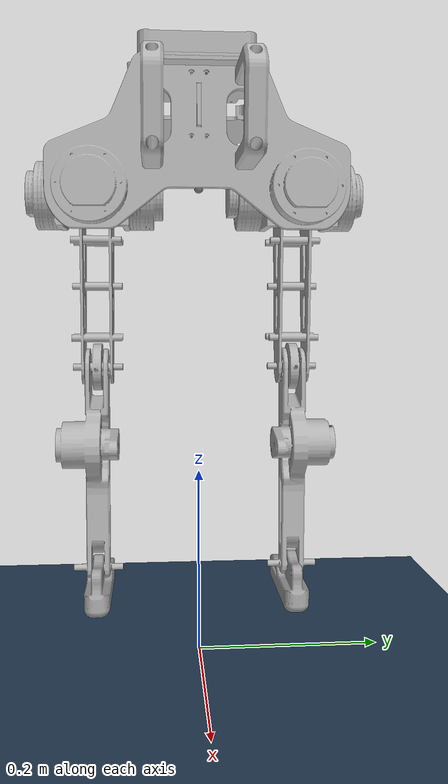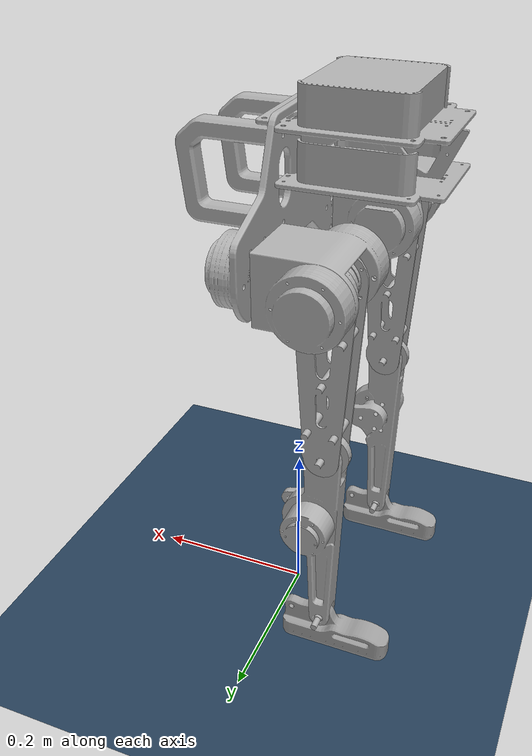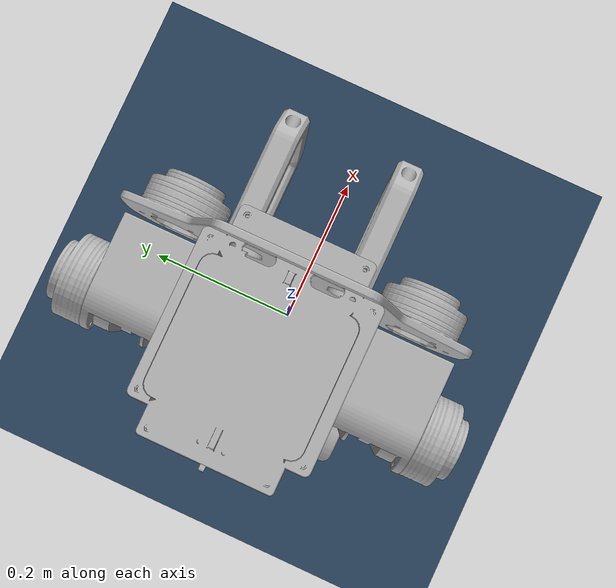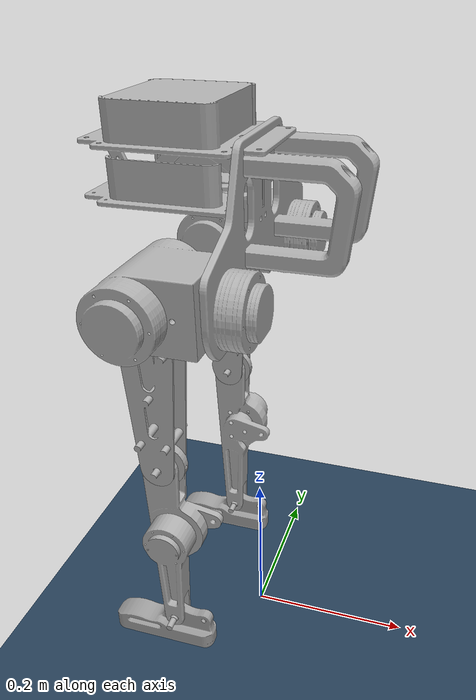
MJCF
<mujoco model="saturdayMASTER.SLDASM">
  <compiler angle="radian" meshdir="assets" texturedir="assets"/>
  <size njmax="500" nconmax="100" />
  <option cone="elliptic" impratio="10"/>

  <default>
    <joint damping="0.03" armature="0.002" frictionloss="0.02"/>
    <general ctrlrange="-3.141592 3.141592" forcerange="-9 9"/>
  </default>

  <asset>
    <mesh name="base_link" file="base_link.STL"/>
    <mesh name="HR" file="HR.STL"/>
    <mesh name="TR" file="TR.STL"/>
    <mesh name="SR" file="SR.STL"/>
    <mesh name="FR" file="FR.STL"/>
    <mesh name="HL" file="HL.STL"/>
    <mesh name="TL" file="TL.STL"/>
    <mesh name="SL" file="SL.STL"/>
    <mesh name="FL" file="FL.STL"/>
    <mesh name="PCPC" file="PCPC.STL"/>

    <texture type="2d" name="trunk_A1" file="trunk_A1.png"/>
    <material name="carbonfibre" texture="trunk_A1" specular="0" shininess="0.25"/>

    <material name="dark" specular="0" shininess="0.25" rgba="0.2 0.2 0.2 1"/>
    <texture name="grid" type="2d" builtin="checker" width="512" height="512" rgb1=".1 .2 .3" rgb2=".2 .3 .4"/>
    <material name="grid" texture="grid" texrepeat="1 1" texuniform="true" reflectance=".2"/>
  </asset>

   <visual>
	  <headlight diffuse="0.6 0.6 0.6" ambient="0.3 0.3 0.3" specular="0 0 0"/>
	  <global azimuth="-90"/>
    <scale forcewidth="0.035" contactwidth="0.1" contactheight="0.04" com="0.2" />
    <rgba com="0.502 1 0 0.5" contactpoint="1 1 0.6 0.4" contactforce="0.98 0.4 0.4 0.7" />
  </visual>

  <statistic extent="1" center="0 0 .3"/>

  <worldbody>
    <light pos="0 0 1.5" dir="0 0 -1" diffuse="0.5 0.5 0.5" specular="0.3 0.3 0.3" directional="true" castshadow="false"/>
    <geom type="plane" size="10 10 .01" material="grid"/>
    <body name="pelvis" pos = "0 0 .51" quat = "1 0 0 1">
      <freejoint/>
      <site name="head" rgba="1 0 0 1" pos="0.0 0.1 0.0" group="5"/>
      <body name="base_inertia">
        <inertial pos="-9.8075E-08 -0.026388 0.016857" quat="7.04842911E-01 7.09363426E-01 2.95162595E-06 -3.53024086E-06" mass="0.8" diaginertia="0.0010747 0.00184807 0.00249313"/>
        <geom type="mesh" rgba="0.69804 0.69804 0.69804 1" mesh="base_link"/>
      </body>
      <body name="pc_inertia">
        <inertial pos="0 0.07705 0.13101" quat="9.99995560e-01 2.97977116e-03 1.48833623e-05 1.00802829e-05" mass="0.84889" diaginertia="0.0012861 0.00135326 0.00243134"/>
        <geom pos="0 0.1668 0.076047" type="mesh" rgba="0.69804 0.69804 0.69804 1" mesh="PCPC"/>
      </body>
      <site name="torso"/>
      <body name="HR" pos="0.116 0.0760307 0">
        <inertial pos="-0.0022112 -0.0074687 0.0012046" quat="0.610545 0.791982 -0.00018656 -0.000166422" mass="1.1716" diaginertia="0.0010107 0.000889554 0.000807186"/>
        <joint name="HR" pos="0 0 0" axis="0 -1 0" limited="false"/>
        <geom type="mesh" rgba="0.69804 0.69804 0.69804 1" mesh="HR"/>
        <body name="TR">
          <inertial pos="0.0032217 -1.4794e-12 -0.11697" quat="1 -2.44026e-05 0 0" mass="0.2485" diaginertia="0.00045966 0.00043118 6.6608e-05"/>
          <joint name="TR" pos="0 0 0" axis="-1 0 0" limited="false"/>
          <joint name="SR_parent" pos="0 0 0" axis="-1 0 0" limited="false"/>
          <geom type="mesh" rgba="0.69804 0.69804 0.69804 1" mesh="TR"/>
          <body name="SR" pos="0 0 -0.2">
            <inertial pos="0.013454 -0.0086691 -0.1053" quat="0.999944 0.00459107 -0.00078075 0.00948332" mass="0.45579" diaginertia="0.000577103 0.000543322 0.000136545"/>
            <joint name="SR" pos="0 0 0" axis="1 0 0" limited="false"/>
            <geom type="mesh" rgba="0.69804 0.69804 0.69804 1" mesh="SR"/>
            <body name="FR" pos="0 0 -0.24">
              <inertial pos="6.2538e-06 0.015791 -0.026269" quat="0.71996 0.694016 0.000136179 -0.000175049" mass="0.12898" diaginertia="0.00019456 0.000193198 1.66785e-05"/>
              <joint name="FR" pos="0 0 0" axis="1 0 0" limited="false" damping="0.07" frictionloss="0.2" armature="0.03"/>
              <geom type="mesh" rgba="0.62745 0.62745 0.62745 1" mesh="FR"/>
              <site name="right_contact_ref" rgba="0 1 0 1" type="sphere" size="0.02"  pos="0.0 0.0 0.0" group="5"/>
              <site name="right_foot" rgba="0 1 0 0.5" pos="0.0 0.0 -0.04" group="5"/>
              <site name="RB" rgba="1 0 0 1" pos="0 0.04 -0.04" type="cylinder" size="0.05" group="5"/>
              <site name="RF" rgba="1 0 0 1" pos="0 -0.04 -0.04" type="cylinder" size="0.05" group="5"/>
            </body>
          </body>
        </body>
      </body>
      <body name="HL" pos="-0.116 0.0760307 0">
        <inertial pos="0.0022047 -0.0074687 0.0010787" quat="0.61048 0.791973 -0.00678111 0.00679143" mass="1.1716" diaginertia="0.00101075 0.00088951 0.000807185"/>
        <joint name="HL" pos="0 0 0" axis="0 -1 0" limited="false"/>
        <geom type="mesh" rgba="0.69804 0.69804 0.69804 1" mesh="HL"/>
        <body name="TL">
          <inertial pos="-0.0032217 1.4785e-12 -0.11697" quat="1 2.44026e-05 0 0" mass="0.2485" diaginertia="0.00045966 0.00043118 6.6608e-05"/>
          <joint name="TL" pos="0 0 0" axis="-1 0 0" limited="false"/>
          <joint name="SL_parent" pos="0 0 0" axis="-1 0 0" limited="false"/>
          <geom type="mesh" rgba="0.69804 0.69804 0.69804 1" mesh="TL"/>
          <body name="SL" pos="0 0 -0.2">
            <inertial pos="-0.013454 -0.0086668 -0.10518" quat="0.999946 0.00483719 -2.73708e-05 -0.00918761" mass="0.45579" diaginertia="0.000577101 0.000543337 0.000136532"/>
            <joint name="SL" pos="0 0 0" axis="1 0 0" limited="false"/>
            <geom type="mesh" rgba="0.69804 0.69804 0.69804 1" mesh="SL"/>
            <body name="FL" pos="0 0 -0.24">
              <inertial pos="6.2538e-06 0.015791 -0.026269" quat="0.71996 0.694016 0.000136179 -0.000175049" mass="0.12898" diaginertia="0.00019456 0.000193198 1.66785e-05"/>
              <joint name="FL" pos="0 0 0" axis="1 0 0" limited="false" damping="0.07" frictionloss="0.2" armature="0.03"/>
              <geom type="mesh" rgba="0.62745 0.62745 0.62745 1" mesh="FL"/>
              <site name="left_contact_ref" rgba="0 1 0 1" type="sphere" size="0.02" pos="0.0 0.0 0.0" group="5"/>
              <site name="left_foot" rgba="1 0 0 1" pos="0 0 -0.04" group="5"/>
              <site name="LB" rgba="1 0 0 1" pos="0 0.04 -0.04" type="cylinder" size="0.05" group="5"/>
              <site name="LF" rgba="1 0 0 1" pos="0 -0.04 -0.04" type="cylinder" size="0.05"  group="5"/>
            </body>
          </body>
        </body>
      </body>
    </body>
  </worldbody>
  <actuator>
    <general name="hipr_act" joint="HR"/>
    <general name="thighr_act" joint="TR"/>
    <general name="shinr_act" joint="SR_parent"/>
    <general name="footr_act" joint="FR"/>
    <general name="hipl_act" joint="HL"/>
    <general name="thighl_act" joint="TL"/>
    <general name="shinl_act" joint="SL_parent"/>
    <general name="footl_act" joint="FL"/>
  </actuator>
  <equality>
    <joint name="axis_constraint_r" active="true" joint1="SR_parent" joint2="SR" solref="1e-10 1"/>
    <joint name="axis_constraint_l" active="true" joint1="SL_parent" joint2="SL" solref="1e-10 1"/>
  </equality>
</mujoco>
